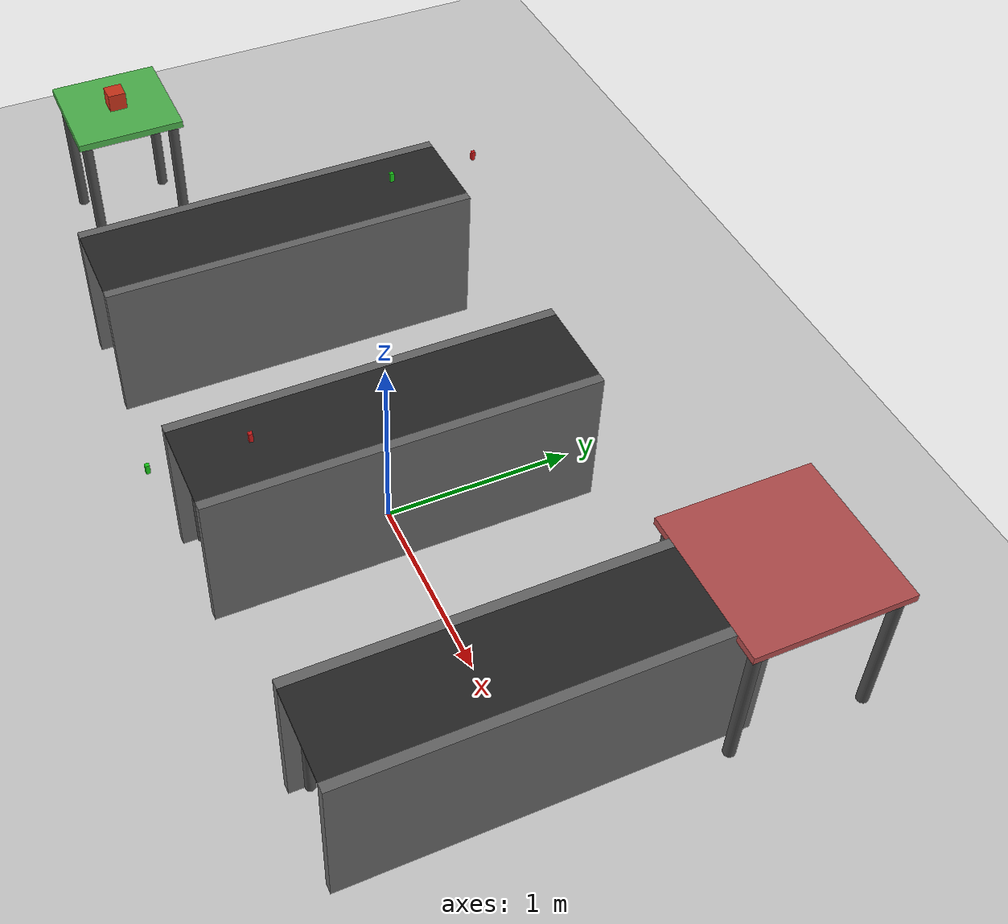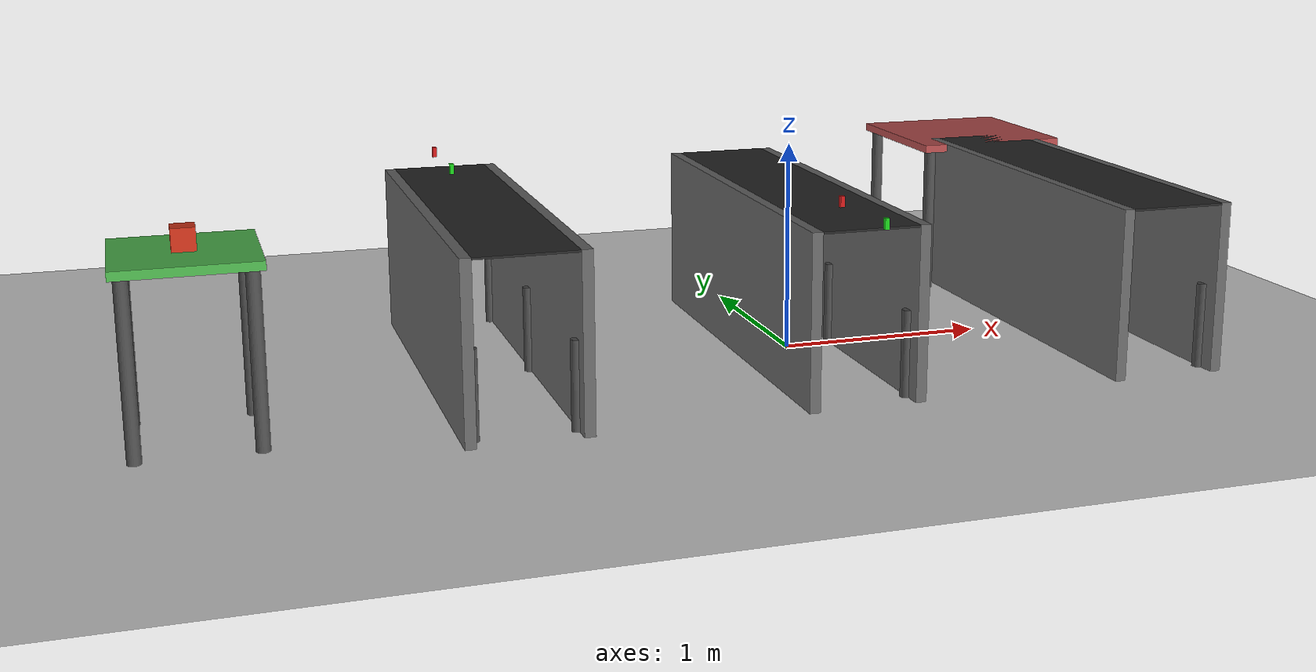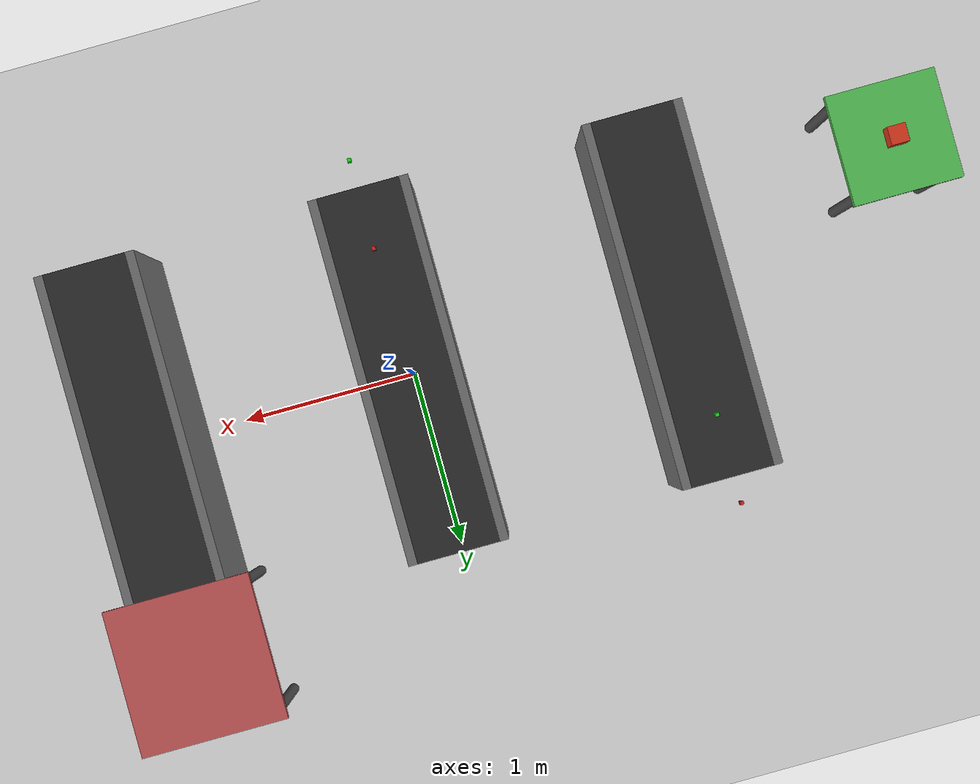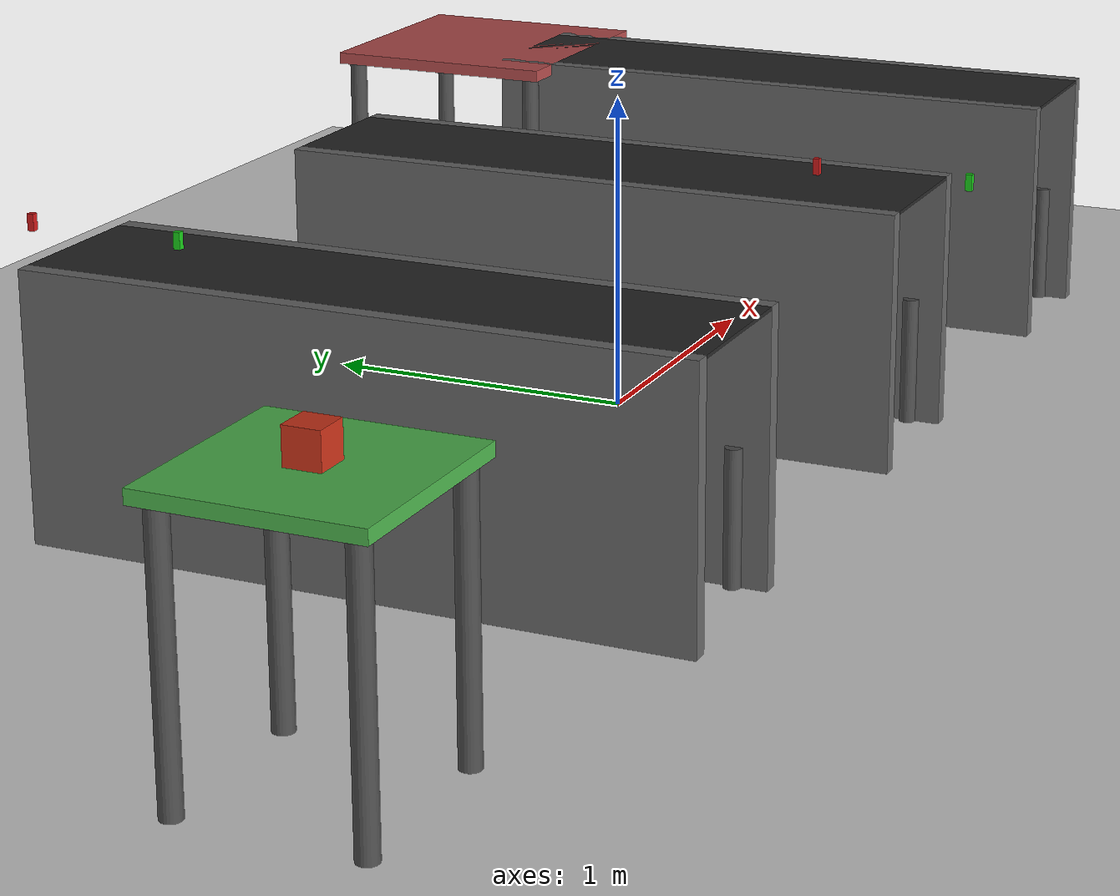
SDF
<?xml version="1.0" ?>
<sdf version="1.6">
  <world name="assembly_line">

    <!-- Physics configuration -->
    <physics type="ode">
      <max_step_size>0.001</max_step_size>
      <real_time_factor>1</real_time_factor>
      <real_time_update_rate>1000</real_time_update_rate>
      <gravity>0 0 -9.81</gravity>
      <ode>
        <solver>
          <type>quick</type>
          <iters>50</iters>
          <sor>1.3</sor>
        </solver>
        <constraints>
          <cfm>0</cfm>
          <erp>0.2</erp>
        </constraints>
      </ode>
    </physics>

    <!-- Lighting -->
    <include>
      <uri>model://sun</uri>
    </include>

    <!-- Additional ceiling lights -->
    <light name="ceiling_light_1" type="point">
      <pose>-2 0 3 0 0 0</pose>
      <diffuse>0.8 0.8 0.8 1</diffuse>
      <specular>0.2 0.2 0.2 1</specular>
      <attenuation>
        <range>10</range>
        <constant>0.5</constant>
        <linear>0.01</linear>
        <quadratic>0.001</quadratic>
      </attenuation>
    </light>

    <light name="ceiling_light_2" type="point">
      <pose>0 0 3 0 0 0</pose>
      <diffuse>0.8 0.8 0.8 1</diffuse>
      <specular>0.2 0.2 0.2 1</specular>
      <attenuation>
        <range>10</range>
        <constant>0.5</constant>
        <linear>0.01</linear>
        <quadratic>0.001</quadratic>
      </attenuation>
    </light>

    <light name="ceiling_light_3" type="point">
      <pose>2 0 3 0 0 0</pose>
      <diffuse>0.8 0.8 0.8 1</diffuse>
      <specular>0.2 0.2 0.2 1</specular>
      <attenuation>
        <range>10</range>
        <constant>0.5</constant>
        <linear>0.01</linear>
        <quadratic>0.001</quadratic>
      </attenuation>
    </light>

    <!-- Ground plane -->
    <include>
      <uri>model://ground_plane</uri>
    </include>

    <!-- CONVEYOR BELT 1 (Robot 1 -> Robot 2)       -->
    <!-- Belt at X=-1.5, runs along Y-axis (2m)     -->
    <include>
      <uri>model://conveyor_belt_1</uri>
      <pose>-1.5 0.0 0 0 0 0</pose>
    </include>

    <!-- CONVEYOR BELT 2 (Robot 2 -> Robot 3)       -->
    <!-- Belt at X=0.0, runs along Y-axis (2m)      -->
    <include>
      <uri>model://conveyor_belt_2</uri>
      <pose>0.0 0.0 0 0 0 0</pose>
    </include>

    <!-- CONVEYOR BELT 3 (Robot 3 -> Accumulation)  -->
    <!-- Belt at X=1.5, runs along Y-axis (2m)      -->
    <include>
      <uri>model://conveyor_belt_3</uri>
      <pose>1.5 0.0 0 0 0 0</pose>
    </include>

    <!-- PICK AREA (Source for Robot 1)             -->
    <!-- West of Robot 1 (x=-2.8, y=-0.5)           -->
    <model name="pick_area_table">
      <static>true</static>
      <pose>-2.8 -0.5 0 0 0 0</pose>
      <link name="table_link">
        <visual name="tabletop">
          <pose>0 0 0.78 0 0 0</pose>
          <geometry>
            <box><size>0.6 0.6 0.04</size></box>
          </geometry>
          <material>
            <ambient>0.2 0.6 0.2 1</ambient>
            <diffuse>0.3 0.7 0.3 1</diffuse>
          </material>
        </visual>
        <collision name="tabletop_collision">
          <pose>0 0 0.78 0 0 0</pose>
          <geometry>
            <box><size>0.6 0.6 0.04</size></box>
          </geometry>
        </collision>
        <!-- Legs -->
        <visual name="leg1">
          <pose>0.25 0.25 0.38 0 0 0</pose>
          <geometry><cylinder><radius>0.03</radius><length>0.76</length></cylinder></geometry>
          <material><ambient>0.3 0.3 0.3 1</ambient></material>
        </visual>
        <visual name="leg2">
          <pose>-0.25 0.25 0.38 0 0 0</pose>
          <geometry><cylinder><radius>0.03</radius><length>0.76</length></cylinder></geometry>
          <material><ambient>0.3 0.3 0.3 1</ambient></material>
        </visual>
        <visual name="leg3">
          <pose>0.25 -0.25 0.38 0 0 0</pose>
          <geometry><cylinder><radius>0.03</radius><length>0.76</length></cylinder></geometry>
          <material><ambient>0.3 0.3 0.3 1</ambient></material>
        </visual>
        <visual name="leg4">
          <pose>-0.25 -0.25 0.38 0 0 0</pose>
          <geometry><cylinder><radius>0.03</radius><length>0.76</length></cylinder></geometry>
          <material><ambient>0.3 0.3 0.3 1</ambient></material>
        </visual>
      </link>
    </model>

    <!-- ACCUMULATION AREA (End of Belt 3)         -->
    <!-- North end of Belt 3 (x=1.5, y=1.2)         -->
    <model name="accumulation_area_table">
      <static>true</static>
      <pose>1.5 1.2 0 0 0 0</pose>
      <link name="table_link">
        <visual name="tabletop">
          <pose>0 0 0.78 0 0 0</pose>
          <geometry>
            <box><size>0.8 0.8 0.04</size></box>
          </geometry>
          <material>
            <ambient>0.6 0.2 0.2 1</ambient>
            <diffuse>0.7 0.3 0.3 1</diffuse>
          </material>
        </visual>
        <collision name="tabletop_collision">
          <pose>0 0 0.78 0 0 0</pose>
          <geometry>
            <box><size>0.8 0.8 0.04</size></box>
          </geometry>
        </collision>
        <!-- Legs -->
        <visual name="leg1">
          <pose>0.35 0.35 0.38 0 0 0</pose>
          <geometry><cylinder><radius>0.03</radius><length>0.76</length></cylinder></geometry>
          <material><ambient>0.3 0.3 0.3 1</ambient></material>
        </visual>
        <visual name="leg2">
          <pose>-0.35 0.35 0.38 0 0 0</pose>
          <geometry><cylinder><radius>0.03</radius><length>0.76</length></cylinder></geometry>
          <material><ambient>0.3 0.3 0.3 1</ambient></material>
        </visual>
        <visual name="leg3">
          <pose>0.35 -0.35 0.38 0 0 0</pose>
          <geometry><cylinder><radius>0.03</radius><length>0.76</length></cylinder></geometry>
          <material><ambient>0.3 0.3 0.3 1</ambient></material>
        </visual>
        <visual name="leg4">
          <pose>-0.35 -0.35 0.38 0 0 0</pose>
          <geometry><cylinder><radius>0.03</radius><length>0.76</length></cylinder></geometry>
          <material><ambient>0.3 0.3 0.3 1</ambient></material>
        </visual>
      </link>
    </model>

    <!-- BELT END SENSORS                           -->

    <!-- Belt 1 End Sensor (triggers Robot 2) -->
    <!-- At north end of Belt 1 (x=-1.5, y=0.9), before R2 -->
    <model name="belt_1_end_sensor">
      <static>true</static>
      <pose>-1.5 0.9 0.85 0 0 1.5708</pose>
      <link name="sensor_link">
        <!-- Emitter side -->
        <visual name="emitter">
          <pose>-0.24 0 0 0 0 0</pose>
          <geometry><box><size>0.02 0.02 0.05</size></box></geometry>
          <material><ambient>0.1 0.8 0.1 1</ambient></material>
        </visual>
        <!-- Receiver side -->
        <visual name="receiver">
          <pose>0.24 0 0 0 0 0</pose>
          <geometry><box><size>0.02 0.02 0.05</size></box></geometry>
          <material><ambient>0.8 0.1 0.1 1</ambient></material>
        </visual>
        <!-- Ray sensor -->
        <sensor name="break_beam_sensor" type="ray">
          <pose>-0.22 0 0 0 0 0</pose>
          <ray>
            <scan>
              <horizontal>
                <samples>1</samples>
                <resolution>1</resolution>
                <min_angle>0</min_angle>
                <max_angle>0</max_angle>
              </horizontal>
            </scan>
            <range>
              <min>0.01</min>
              <max>0.5</max>
              <resolution>0.001</resolution>
            </range>
          </ray>
          <plugin name="gazebo_ros_ray_sensor" filename="libgazebo_ros_ray_sensor.so">
            <ros>
              <namespace>sensors/belt_1_end</namespace>
              <remapping>~/out:=break_beam</remapping>
            </ros>
            <output_type>sensor_msgs/Range</output_type>
            <frame_name>belt_1_end_sensor</frame_name>
          </plugin>
          <always_on>true</always_on>
          <update_rate>30</update_rate>
          <visualize>true</visualize>
        </sensor>
      </link>
    </model>

    <!-- Belt 2 End Sensor (triggers Robot 3) -->
    <!-- At south end of Belt 2 (x=0.0, y=-0.9), before R3 (Belt 2 flows south!) -->
    <model name="belt_2_end_sensor">
      <static>true</static>
      <pose>0.0 -0.9 0.85 0 0 1.5708</pose>
      <link name="sensor_link">
        <visual name="emitter">
          <pose>-0.24 0 0 0 0 0</pose>
          <geometry><box><size>0.02 0.02 0.05</size></box></geometry>
          <material><ambient>0.1 0.8 0.1 1</ambient></material>
        </visual>
        <visual name="receiver">
          <pose>0.24 0 0 0 0 0</pose>
          <geometry><box><size>0.02 0.02 0.05</size></box></geometry>
          <material><ambient>0.8 0.1 0.1 1</ambient></material>
        </visual>
        <sensor name="break_beam_sensor" type="ray">
          <pose>-0.22 0 0 0 0 0</pose>
          <ray>
            <scan>
              <horizontal>
                <samples>1</samples>
                <resolution>1</resolution>
                <min_angle>0</min_angle>
                <max_angle>0</max_angle>
              </horizontal>
            </scan>
            <range>
              <min>0.01</min>
              <max>0.5</max>
              <resolution>0.001</resolution>
            </range>
          </ray>
          <plugin name="gazebo_ros_ray_sensor" filename="libgazebo_ros_ray_sensor.so">
            <ros>
              <namespace>sensors/belt_2_end</namespace>
              <remapping>~/out:=break_beam</remapping>
            </ros>
            <output_type>sensor_msgs/Range</output_type>
            <frame_name>belt_2_end_sensor</frame_name>
          </plugin>
          <always_on>true</always_on>
          <update_rate>30</update_rate>
          <visualize>true</visualize>
        </sensor>
      </link>
    </model>

    <!-- TEST PAYLOAD BOX (on pick area)            -->
    <!-- Starts on pick_area_table for Robot 1     -->
    <model name="payload_box_1">
      <static>false</static>
      <pose>-2.8 -0.5 0.85 0 0 0</pose>
      <link name="box_link">
        <inertial>
          <mass>0.5</mass>
          <inertia>
            <ixx>0.000833</ixx><ixy>0</ixy><ixz>0</ixz>
            <iyy>0.000833</iyy><iyz>0</iyz><izz>0.000833</izz>
          </inertia>
        </inertial>
        <collision name="collision">
          <geometry><box><size>0.1 0.1 0.1</size></box></geometry>
          <surface>
            <friction>
              <ode>
                <mu>1.0</mu>
                <mu2>1.0</mu2>
              </ode>
            </friction>
          </surface>
        </collision>
        <visual name="visual">
          <geometry><box><size>0.1 0.1 0.1</size></box></geometry>
          <material><ambient>0.8 0.2 0.1 1</ambient></material>
        </visual>
      </link>
    </model>

    <!-- Scene settings -->
    <scene>
      <ambient>0.4 0.4 0.4 1</ambient>
      <background>0.7 0.7 0.7 1</background>
      <shadows>true</shadows>
    </scene>

  </world>
</sdf>

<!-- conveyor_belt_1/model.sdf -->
<!--
  2-meter Conveyor Belt for Parallel Multi-Robot Assembly Line
  Length: 2 meters
  Width: 0.45 meters
  Based on IFRA-Cranfield conveyor belt plugin.
-->
<sdf version="1.6">
  <model name="conveyor_belt_1">

    <!-- Static frame/structure of the conveyor -->
    <model name="conveyorbelt_fixed">
      <static>true</static>

      <!-- Main belt structure -->
      <link name="belt_visual">
        <pose>0 0 0 0 0 0</pose>

        <!-- Belt frame - left side -->
        <visual name="frame_left">
          <pose>-0.25 0 0.4 0 0 0</pose>
          <geometry>
            <box>
              <size>0.05 2.0 0.8</size>
            </box>
          </geometry>
          <material>
            <ambient>0.3 0.3 0.3 1</ambient>
            <diffuse>0.4 0.4 0.4 1</diffuse>
          </material>
        </visual>
        <collision name="frame_left_collision">
          <pose>-0.25 0 0.4 0 0 0</pose>
          <geometry>
            <box>
              <size>0.05 2.0 0.8</size>
            </box>
          </geometry>
        </collision>

        <!-- Belt frame - right side -->
        <visual name="frame_right">
          <pose>0.25 0 0.4 0 0 0</pose>
          <geometry>
            <box>
              <size>0.05 2.0 0.8</size>
            </box>
          </geometry>
          <material>
            <ambient>0.3 0.3 0.3 1</ambient>
            <diffuse>0.4 0.4 0.4 1</diffuse>
          </material>
        </visual>
        <collision name="frame_right_collision">
          <pose>0.25 0 0.4 0 0 0</pose>
          <geometry>
            <box>
              <size>0.05 2.0 0.8</size>
            </box>
          </geometry>
        </collision>

        <!-- Legs -->
        <visual name="leg_front_left">
          <pose>-0.22 -0.9 0.2 0 0 0</pose>
          <geometry>
            <cylinder>
              <radius>0.025</radius>
              <length>0.4</length>
            </cylinder>
          </geometry>
          <material>
            <ambient>0.2 0.2 0.2 1</ambient>
            <diffuse>0.3 0.3 0.3 1</diffuse>
          </material>
        </visual>

        <visual name="leg_front_right">
          <pose>0.22 -0.9 0.2 0 0 0</pose>
          <geometry>
            <cylinder>
              <radius>0.025</radius>
              <length>0.4</length>
            </cylinder>
          </geometry>
          <material>
            <ambient>0.2 0.2 0.2 1</ambient>
            <diffuse>0.3 0.3 0.3 1</diffuse>
          </material>
        </visual>

        <visual name="leg_back_left">
          <pose>-0.22 0.9 0.2 0 0 0</pose>
          <geometry>
            <cylinder>
              <radius>0.025</radius>
              <length>0.4</length>
            </cylinder>
          </geometry>
          <material>
            <ambient>0.2 0.2 0.2 1</ambient>
            <diffuse>0.3 0.3 0.3 1</diffuse>
          </material>
        </visual>

        <visual name="leg_back_right">
          <pose>0.22 0.9 0.2 0 0 0</pose>
          <geometry>
            <cylinder>
              <radius>0.025</radius>
              <length>0.4</length>
            </cylinder>
          </geometry>
          <material>
            <ambient>0.2 0.2 0.2 1</ambient>
            <diffuse>0.3 0.3 0.3 1</diffuse>
          </material>
        </visual>

        <!-- Middle legs for support -->
        <visual name="leg_mid_left">
          <pose>-0.22 0 0.2 0 0 0</pose>
          <geometry>
            <cylinder>
              <radius>0.025</radius>
              <length>0.4</length>
            </cylinder>
          </geometry>
          <material>
            <ambient>0.2 0.2 0.2 1</ambient>
            <diffuse>0.3 0.3 0.3 1</diffuse>
          </material>
        </visual>

        <visual name="leg_mid_right">
          <pose>0.22 0 0.2 0 0 0</pose>
          <geometry>
            <cylinder>
              <radius>0.025</radius>
              <length>0.4</length>
            </cylinder>
          </geometry>
          <material>
            <ambient>0.2 0.2 0.2 1</ambient>
            <diffuse>0.3 0.3 0.3 1</diffuse>
          </material>
        </visual>

        <!-- Belt surface visual (static part) -->
        <visual name="belt_surface">
          <pose>0 0 0.795 0 0 0</pose>
          <geometry>
            <box>
              <size>0.45 2.0 0.01</size>
            </box>
          </geometry>
          <material>
            <ambient>0.1 0.1 0.1 1</ambient>
            <diffuse>0.15 0.15 0.15 1</diffuse>
          </material>
        </visual>
      </link>
    </model>

    <!-- Moving belt surface -->
    <model name="conveyorbelt_moving">
      <allow_auto_disable>0</allow_auto_disable>
      <static>false</static>
      <pose>0 0 0.8 0 0 0</pose>

      <link name="belt_moving">
        <inertial>
          <mass>50.0</mass>
          <inertia>
            <ixx>0.0</ixx>
            <ixy>0.0</ixy>
            <ixz>0.0</ixz>
            <iyy>0.0</iyy>
            <iyz>0.0</iyz>
            <izz>0.0</izz>
          </inertia>
        </inertial>

        <collision name="belt_collision">
          <geometry>
            <box>
              <size>0.42 2.0 0.00001</size>
            </box>
          </geometry>
          <surface>
            <friction>
              <ode>
                <mu>100.0</mu>
                <mu2>100.0</mu2>
              </ode>
              <torsional>
                <coefficient>1000.0</coefficient>
                <patch_radius>0.1</patch_radius>
              </torsional>
            </friction>
          </surface>
        </collision>
      </link>
    </model>

    <!-- Joint connecting moving and fixed parts -->
    <joint name="belt_joint" type="prismatic">
      <parent>conveyorbelt_fixed::belt_visual</parent>
      <child>conveyorbelt_moving::belt_moving</child>
      <axis>
        <xyz>0 1 0</xyz>
        <limit>
          <lower>0.0</lower>
          <upper>0.01</upper>
        </limit>
      </axis>
    </joint>

    <!-- ROS2 Conveyor Belt Plugin -->
    <plugin name="ros2_conveyorbelt_plugin" filename="libros2_conveyorbelt_plugin.so">
      <ros>
        <namespace>conveyor_belt_1</namespace>
      </ros>
      <max_velocity>0.5</max_velocity>
      <publish_rate>100</publish_rate>
    </plugin>

  </model>
</sdf>

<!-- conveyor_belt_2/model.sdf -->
<!--
  2-meter Conveyor Belt for Parallel Multi-Robot Assembly Line
  Length: 2 meters
  Width: 0.45 meters
  Based on IFRA-Cranfield conveyor belt plugin.
-->
<sdf version="1.6">
  <model name="conveyor_belt_2">

    <!-- Static frame/structure of the conveyor -->
    <model name="conveyorbelt_fixed">
      <static>true</static>

      <!-- Main belt structure -->
      <link name="belt_visual">
        <pose>0 0 0 0 0 0</pose>

        <!-- Belt frame - left side -->
        <visual name="frame_left">
          <pose>-0.25 0 0.4 0 0 0</pose>
          <geometry>
            <box>
              <size>0.05 2.0 0.8</size>
            </box>
          </geometry>
          <material>
            <ambient>0.3 0.3 0.3 1</ambient>
            <diffuse>0.4 0.4 0.4 1</diffuse>
          </material>
        </visual>
        <collision name="frame_left_collision">
          <pose>-0.25 0 0.4 0 0 0</pose>
          <geometry>
            <box>
              <size>0.05 2.0 0.8</size>
            </box>
          </geometry>
        </collision>

        <!-- Belt frame - right side -->
        <visual name="frame_right">
          <pose>0.25 0 0.4 0 0 0</pose>
          <geometry>
            <box>
              <size>0.05 2.0 0.8</size>
            </box>
          </geometry>
          <material>
            <ambient>0.3 0.3 0.3 1</ambient>
            <diffuse>0.4 0.4 0.4 1</diffuse>
          </material>
        </visual>
        <collision name="frame_right_collision">
          <pose>0.25 0 0.4 0 0 0</pose>
          <geometry>
            <box>
              <size>0.05 2.0 0.8</size>
            </box>
          </geometry>
        </collision>

        <!-- Legs -->
        <visual name="leg_front_left">
          <pose>-0.22 -0.9 0.2 0 0 0</pose>
          <geometry>
            <cylinder>
              <radius>0.025</radius>
              <length>0.4</length>
            </cylinder>
          </geometry>
          <material>
            <ambient>0.2 0.2 0.2 1</ambient>
            <diffuse>0.3 0.3 0.3 1</diffuse>
          </material>
        </visual>

        <visual name="leg_front_right">
          <pose>0.22 -0.9 0.2 0 0 0</pose>
          <geometry>
            <cylinder>
              <radius>0.025</radius>
              <length>0.4</length>
            </cylinder>
          </geometry>
          <material>
            <ambient>0.2 0.2 0.2 1</ambient>
            <diffuse>0.3 0.3 0.3 1</diffuse>
          </material>
        </visual>

        <visual name="leg_back_left">
          <pose>-0.22 0.9 0.2 0 0 0</pose>
          <geometry>
            <cylinder>
              <radius>0.025</radius>
              <length>0.4</length>
            </cylinder>
          </geometry>
          <material>
            <ambient>0.2 0.2 0.2 1</ambient>
            <diffuse>0.3 0.3 0.3 1</diffuse>
          </material>
        </visual>

        <visual name="leg_back_right">
          <pose>0.22 0.9 0.2 0 0 0</pose>
          <geometry>
            <cylinder>
              <radius>0.025</radius>
              <length>0.4</length>
            </cylinder>
          </geometry>
          <material>
            <ambient>0.2 0.2 0.2 1</ambient>
            <diffuse>0.3 0.3 0.3 1</diffuse>
          </material>
        </visual>

        <!-- Middle legs for support -->
        <visual name="leg_mid_left">
          <pose>-0.22 0 0.2 0 0 0</pose>
          <geometry>
            <cylinder>
              <radius>0.025</radius>
              <length>0.4</length>
            </cylinder>
          </geometry>
          <material>
            <ambient>0.2 0.2 0.2 1</ambient>
            <diffuse>0.3 0.3 0.3 1</diffuse>
          </material>
        </visual>

        <visual name="leg_mid_right">
          <pose>0.22 0 0.2 0 0 0</pose>
          <geometry>
            <cylinder>
              <radius>0.025</radius>
              <length>0.4</length>
            </cylinder>
          </geometry>
          <material>
            <ambient>0.2 0.2 0.2 1</ambient>
            <diffuse>0.3 0.3 0.3 1</diffuse>
          </material>
        </visual>

        <!-- Belt surface visual (static part) -->
        <visual name="belt_surface">
          <pose>0 0 0.795 0 0 0</pose>
          <geometry>
            <box>
              <size>0.45 2.0 0.01</size>
            </box>
          </geometry>
          <material>
            <ambient>0.1 0.1 0.1 1</ambient>
            <diffuse>0.15 0.15 0.15 1</diffuse>
          </material>
        </visual>
      </link>
    </model>

    <!-- Moving belt surface -->
    <model name="conveyorbelt_moving">
      <allow_auto_disable>0</allow_auto_disable>
      <static>false</static>
      <pose>0 0 0.8 0 0 0</pose>

      <link name="belt_moving">
        <inertial>
          <mass>50.0</mass>
          <inertia>
            <ixx>0.0</ixx>
            <ixy>0.0</ixy>
            <ixz>0.0</ixz>
            <iyy>0.0</iyy>
            <iyz>0.0</iyz>
            <izz>0.0</izz>
          </inertia>
        </inertial>

        <collision name="belt_collision">
          <geometry>
            <box>
              <size>0.42 2.0 0.00001</size>
            </box>
          </geometry>
          <surface>
            <friction>
              <ode>
                <mu>100.0</mu>
                <mu2>100.0</mu2>
              </ode>
              <torsional>
                <coefficient>1000.0</coefficient>
                <patch_radius>0.1</patch_radius>
              </torsional>
            </friction>
          </surface>
        </collision>
      </link>
    </model>

    <!-- Joint connecting moving and fixed parts -->
    <joint name="belt_joint" type="prismatic">
      <parent>conveyorbelt_fixed::belt_visual</parent>
      <child>conveyorbelt_moving::belt_moving</child>
      <axis>
        <xyz>0 1 0</xyz>
        <limit>
          <lower>0.0</lower>
          <upper>0.01</upper>
        </limit>
      </axis>
    </joint>

    <!-- ROS2 Conveyor Belt Plugin -->
    <plugin name="ros2_conveyorbelt_plugin" filename="libros2_conveyorbelt_plugin.so">
      <ros>
        <namespace>conveyor_belt_2</namespace>
      </ros>
      <max_velocity>0.5</max_velocity>
      <publish_rate>100</publish_rate>
    </plugin>

  </model>
</sdf>

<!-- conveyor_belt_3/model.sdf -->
<!--
  2-meter Conveyor Belt for Parallel Multi-Robot Assembly Line
  Length: 2 meters
  Width: 0.45 meters
  Based on IFRA-Cranfield conveyor belt plugin.
-->
<sdf version="1.6">
  <model name="conveyor_belt_3">

    <!-- Static frame/structure of the conveyor -->
    <model name="conveyorbelt_fixed">
      <static>true</static>

      <!-- Main belt structure -->
      <link name="belt_visual">
        <pose>0 0 0 0 0 0</pose>

        <!-- Belt frame - left side -->
        <visual name="frame_left">
          <pose>-0.25 0 0.4 0 0 0</pose>
          <geometry>
            <box>
              <size>0.05 2.0 0.8</size>
            </box>
          </geometry>
          <material>
            <ambient>0.3 0.3 0.3 1</ambient>
            <diffuse>0.4 0.4 0.4 1</diffuse>
          </material>
        </visual>
        <collision name="frame_left_collision">
          <pose>-0.25 0 0.4 0 0 0</pose>
          <geometry>
            <box>
              <size>0.05 2.0 0.8</size>
            </box>
          </geometry>
        </collision>

        <!-- Belt frame - right side -->
        <visual name="frame_right">
          <pose>0.25 0 0.4 0 0 0</pose>
          <geometry>
            <box>
              <size>0.05 2.0 0.8</size>
            </box>
          </geometry>
          <material>
            <ambient>0.3 0.3 0.3 1</ambient>
            <diffuse>0.4 0.4 0.4 1</diffuse>
          </material>
        </visual>
        <collision name="frame_right_collision">
          <pose>0.25 0 0.4 0 0 0</pose>
          <geometry>
            <box>
              <size>0.05 2.0 0.8</size>
            </box>
          </geometry>
        </collision>

        <!-- Legs -->
        <visual name="leg_front_left">
          <pose>-0.22 -0.9 0.2 0 0 0</pose>
          <geometry>
            <cylinder>
              <radius>0.025</radius>
              <length>0.4</length>
            </cylinder>
          </geometry>
          <material>
            <ambient>0.2 0.2 0.2 1</ambient>
            <diffuse>0.3 0.3 0.3 1</diffuse>
          </material>
        </visual>

        <visual name="leg_front_right">
          <pose>0.22 -0.9 0.2 0 0 0</pose>
          <geometry>
            <cylinder>
              <radius>0.025</radius>
              <length>0.4</length>
            </cylinder>
          </geometry>
          <material>
            <ambient>0.2 0.2 0.2 1</ambient>
            <diffuse>0.3 0.3 0.3 1</diffuse>
          </material>
        </visual>

        <visual name="leg_back_left">
          <pose>-0.22 0.9 0.2 0 0 0</pose>
          <geometry>
            <cylinder>
              <radius>0.025</radius>
              <length>0.4</length>
            </cylinder>
          </geometry>
          <material>
            <ambient>0.2 0.2 0.2 1</ambient>
            <diffuse>0.3 0.3 0.3 1</diffuse>
          </material>
        </visual>

        <visual name="leg_back_right">
          <pose>0.22 0.9 0.2 0 0 0</pose>
          <geometry>
            <cylinder>
              <radius>0.025</radius>
              <length>0.4</length>
            </cylinder>
          </geometry>
          <material>
            <ambient>0.2 0.2 0.2 1</ambient>
            <diffuse>0.3 0.3 0.3 1</diffuse>
          </material>
        </visual>

        <!-- Middle legs for support -->
        <visual name="leg_mid_left">
          <pose>-0.22 0 0.2 0 0 0</pose>
          <geometry>
            <cylinder>
              <radius>0.025</radius>
              <length>0.4</length>
            </cylinder>
          </geometry>
          <material>
            <ambient>0.2 0.2 0.2 1</ambient>
            <diffuse>0.3 0.3 0.3 1</diffuse>
          </material>
        </visual>

        <visual name="leg_mid_right">
          <pose>0.22 0 0.2 0 0 0</pose>
          <geometry>
            <cylinder>
              <radius>0.025</radius>
              <length>0.4</length>
            </cylinder>
          </geometry>
          <material>
            <ambient>0.2 0.2 0.2 1</ambient>
            <diffuse>0.3 0.3 0.3 1</diffuse>
          </material>
        </visual>

        <!-- Belt surface visual (static part) -->
        <visual name="belt_surface">
          <pose>0 0 0.795 0 0 0</pose>
          <geometry>
            <box>
              <size>0.45 2.0 0.01</size>
            </box>
          </geometry>
          <material>
            <ambient>0.1 0.1 0.1 1</ambient>
            <diffuse>0.15 0.15 0.15 1</diffuse>
          </material>
        </visual>
      </link>
    </model>

    <!-- Moving belt surface -->
    <model name="conveyorbelt_moving">
      <allow_auto_disable>0</allow_auto_disable>
      <static>false</static>
      <pose>0 0 0.8 0 0 0</pose>

      <link name="belt_moving">
        <inertial>
          <mass>50.0</mass>
          <inertia>
            <ixx>0.0</ixx>
            <ixy>0.0</ixy>
            <ixz>0.0</ixz>
            <iyy>0.0</iyy>
            <iyz>0.0</iyz>
            <izz>0.0</izz>
          </inertia>
        </inertial>

        <collision name="belt_collision">
          <geometry>
            <box>
              <size>0.42 2.0 0.00001</size>
            </box>
          </geometry>
          <surface>
            <friction>
              <ode>
                <mu>100.0</mu>
                <mu2>100.0</mu2>
              </ode>
              <torsional>
                <coefficient>1000.0</coefficient>
                <patch_radius>0.1</patch_radius>
              </torsional>
            </friction>
          </surface>
        </collision>
      </link>
    </model>

    <!-- Joint connecting moving and fixed parts -->
    <joint name="belt_joint" type="prismatic">
      <parent>conveyorbelt_fixed::belt_visual</parent>
      <child>conveyorbelt_moving::belt_moving</child>
      <axis>
        <xyz>0 1 0</xyz>
        <limit>
          <lower>0.0</lower>
          <upper>0.01</upper>
        </limit>
      </axis>
    </joint>

    <!-- ROS2 Conveyor Belt Plugin -->
    <plugin name="ros2_conveyorbelt_plugin" filename="libros2_conveyorbelt_plugin.so">
      <ros>
        <namespace>conveyor_belt_3</namespace>
      </ros>
      <max_velocity>0.5</max_velocity>
      <publish_rate>100</publish_rate>
    </plugin>

  </model>
</sdf>
